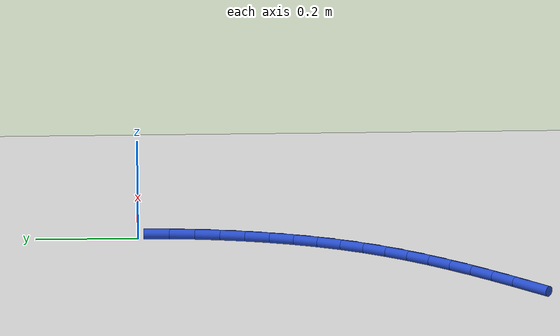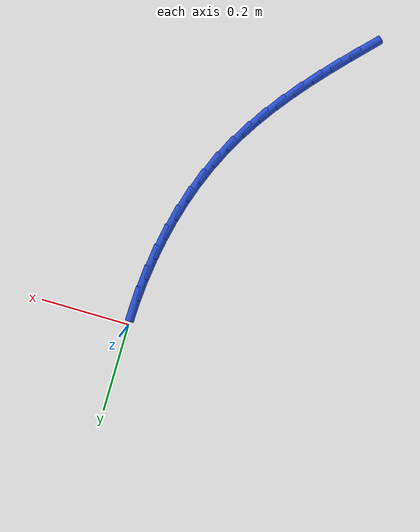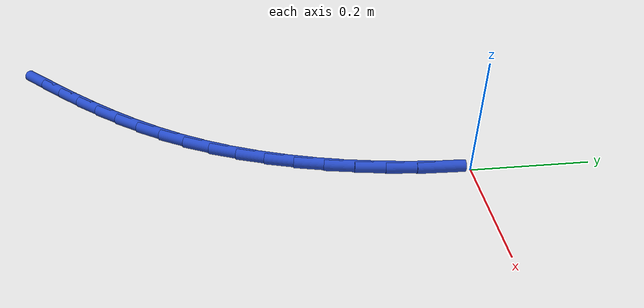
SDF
<sdf version="1.6">
 <world name="default">
  <model name="ground_plane">
   <static>1</static>
   <link name="link">
    <collision name="collision">
     <geometry><plane><normal>0 0 1</normal><size>100 100</size></plane></geometry>
     <surface><friction><ode><mu>100</mu><mu2>50</mu2></ode></friction></surface>
    </collision>
    <visual name="visual">
     <cast_shadows>0</cast_shadows>
     <geometry><plane><normal>0 0 1</normal><size>100 100</size></plane></geometry>
     <material>
      <script><uri>file://media/materials/scripts/gazebo.material</uri><name>Gazebo/WhiteGlow</name></script>
     </material>
    </visual>
   </link>
  </model>
  <model name="line">
   <link name="link_123">
    <pose>-0.33504813264265254 -0.7394317669671104 0.01 0 1.57 0.8086259768420038</pose>
    <collision name="collision">
     <geometry><cylinder><radius>0.01</radius><length>0.08</length></cylinder></geometry>
    </collision>
    <visual name="visual">
     <material>
      <script><name>Gazebo/Blue</name><uri>file://media/materials/scripts/gazebo.material</uri></script>
     </material>
     <geometry><cylinder><radius>0.01</radius><length>0.08</length></cylinder></geometry>
    </visual>
   </link>
   <link name="link_124">
    <pose>-0.3002717385257896 -0.7030010907823178 0.01 0 1.57 0.82628433889937</pose>
    <collision name="collision">
     <geometry><cylinder><radius>0.01</radius><length>0.08</length></cylinder></geometry>
    </collision>
    <visual name="visual">
     <material>
      <script><name>Gazebo/Blue</name><uri>file://media/materials/scripts/gazebo.material</uri></script>
     </material>
     <geometry><cylinder><radius>0.01</radius><length>0.08</length></cylinder></geometry>
    </visual>
   </link>
   <link name="link_125">
    <pose>-0.26646326476443616 -0.6663084904413987 0.01 0 1.57 0.8503381632864849</pose>
    <collision name="collision">
     <geometry><cylinder><radius>0.01</radius><length>0.08</length></cylinder></geometry>
    </collision>
    <visual name="visual">
     <material>
      <script><name>Gazebo/Blue</name><uri>file://media/materials/scripts/gazebo.material</uri></script>
     </material>
     <geometry><cylinder><radius>0.01</radius><length>0.08</length></cylinder></geometry>
    </visual>
   </link>
   <link name="link_126">
    <pose>-0.23385978781455463 -0.6291695644197086 0.01 0 1.57 0.8809736005910886</pose>
    <collision name="collision">
     <geometry><cylinder><radius>0.01</radius><length>0.08</length></cylinder></geometry>
    </collision>
    <visual name="visual">
     <material>
      <script><name>Gazebo/Blue</name><uri>file://media/materials/scripts/gazebo.material</uri></script>
     </material>
     <geometry><cylinder><radius>0.01</radius><length>0.08</length></cylinder></geometry>
    </visual>
   </link>
   <link name="link_127">
    <pose>-0.202698384132109 -0.5913999111926046 0.01 0 1.57 0.9183383061653961</pose>
    <collision name="collision">
     <geometry><cylinder><radius>0.01</radius><length>0.08</length></cylinder></geometry>
    </collision>
    <visual name="visual">
     <material>
      <script><name>Gazebo/Blue</name><uri>file://media/materials/scripts/gazebo.material</uri></script>
     </material>
     <geometry><cylinder><radius>0.01</radius><length>0.08</length></cylinder></geometry>
    </visual>
   </link>
   <link name="link_128">
    <pose>-0.17321613017306176 -0.5528151292354425 0.01 0 1.57 0.9624988473988656</pose>
    <collision name="collision">
     <geometry><cylinder><radius>0.01</radius><length>0.08</length></cylinder></geometry>
    </collision>
    <visual name="visual">
     <material>
      <script><name>Gazebo/Blue</name><uri>file://media/materials/scripts/gazebo.material</uri></script>
     </material>
     <geometry><cylinder><radius>0.01</radius><length>0.08</length></cylinder></geometry>
    </visual>
   </link>
   <link name="link_129">
    <pose>-0.1456501023933758 -0.5132308170235784 0.01 0 1.57 1.0133872302221651</pose>
    <collision name="collision">
     <geometry><cylinder><radius>0.01</radius><length>0.08</length></cylinder></geometry>
    </collision>
    <visual name="visual">
     <material>
      <script><name>Gazebo/Blue</name><uri>file://media/materials/scripts/gazebo.material</uri></script>
     </material>
     <geometry><cylinder><radius>0.01</radius><length>0.08</length></cylinder></geometry>
    </visual>
   </link>
   <link name="link_130">
    <pose>-0.12023737724901416 -0.4724625730323681 0.01 0 1.57 1.070740140489624</pose>
    <collision name="collision">
     <geometry><cylinder><radius>0.01</radius><length>0.08</length></cylinder></geometry>
    </collision>
    <visual name="visual">
     <material>
      <script><name>Gazebo/Blue</name><uri>file://media/materials/scripts/gazebo.material</uri></script>
     </material>
     <geometry><cylinder><radius>0.01</radius><length>0.08</length></cylinder></geometry>
    </visual>
   </link>
   <link name="link_131">
    <pose>-0.09721500310308662 -0.4303260270496143 0.01 0 1.57 1.132267816999441</pose>
    <collision name="collision">
     <geometry><cylinder><radius>0.01</radius><length>0.08</length></cylinder></geometry>
    </collision>
    <visual name="visual">
     <material>
      <script><name>Gazebo/Blue</name><uri>file://media/materials/scripts/gazebo.material</uri></script>
     </material>
     <geometry><cylinder><radius>0.01</radius><length>0.08</length></cylinder></geometry>
    </visual>
   </link>
   <link name="link_132">
    <pose>-0.07675791893645778 -0.3867060363200219 0.01 0 1.57 1.1920183235186443</pose>
    <collision name="collision">
     <geometry><cylinder><radius>0.01</radius><length>0.08</length></cylinder></geometry>
    </collision>
    <visual name="visual">
     <material>
      <script><name>Gazebo/Blue</name><uri>file://media/materials/scripts/gazebo.material</uri></script>
     </material>
     <geometry><cylinder><radius>0.01</radius><length>0.08</length></cylinder></geometry>
    </visual>
   </link>
   <link name="link_133">
    <pose>-0.058847119748227726 -0.3417036291103344 0.01 0 1.57 1.2489024494713046</pose>
    <collision name="collision">
     <geometry><cylinder><radius>0.01</radius><length>0.08</length></cylinder></geometry>
    </collision>
    <visual name="visual">
     <material>
      <script><name>Gazebo/Blue</name><uri>file://media/materials/scripts/gazebo.material</uri></script>
     </material>
     <geometry><cylinder><radius>0.01</radius><length>0.08</length></cylinder></geometry>
    </visual>
   </link>
   <link name="link_134">
    <pose>-0.043425849528565666 -0.29546191116817266 0.01 0 1.57 1.30300822784462</pose>
    <collision name="collision">
     <geometry><cylinder><radius>0.01</radius><length>0.08</length></cylinder></geometry>
    </collision>
    <visual name="visual">
     <material>
      <script><name>Gazebo/Blue</name><uri>file://media/materials/scripts/gazebo.material</uri></script>
     </material>
     <geometry><cylinder><radius>0.01</radius><length>0.08</length></cylinder></geometry>
    </visual>
   </link>
   <link name="link_135">
    <pose>-0.03043735226764068 -0.24812398824115645 0.01 0 1.57 1.354474059128867</pose>
    <collision name="collision">
     <geometry><cylinder><radius>0.01</radius><length>0.08</length></cylinder></geometry>
    </collision>
    <visual name="visual">
     <material>
      <script><name>Gazebo/Blue</name><uri>file://media/materials/scripts/gazebo.material</uri></script>
     </material>
     <geometry><cylinder><radius>0.01</radius><length>0.08</length></cylinder></geometry>
    </visual>
   </link>
   <link name="link_136">
    <pose>-0.01982487195562247 -0.1998329660769081 0.01 0 1.57 1.4034743214180234</pose>
    <collision name="collision">
     <geometry><cylinder><radius>0.01</radius><length>0.08</length></cylinder></geometry>
    </collision>
    <visual name="visual">
     <material>
      <script><name>Gazebo/Blue</name><uri>file://media/materials/scripts/gazebo.material</uri></script>
     </material>
     <geometry><cylinder><radius>0.01</radius><length>0.08</length></cylinder></geometry>
    </visual>
   </link>
   <link name="link_137">
    <pose>-0.011531652582680026 -0.1507319504230477 0.01 0 1.57 1.450207484621406</pose>
    <collision name="collision">
     <geometry><cylinder><radius>0.01</radius><length>0.08</length></cylinder></geometry>
    </collision>
    <visual name="visual">
     <material>
      <script><name>Gazebo/Blue</name><uri>file://media/materials/scripts/gazebo.material</uri></script>
     </material>
     <geometry><cylinder><radius>0.01</radius><length>0.08</length></cylinder></geometry>
    </visual>
   </link>
   <link name="link_138">
    <pose>-0.005500938138982636 -0.10096404702719586 0.01 0 1.57 1.4948868425815465</pose>
    <collision name="collision">
     <geometry><cylinder><radius>0.01</radius><length>0.08</length></cylinder></geometry>
    </collision>
    <visual name="visual">
     <material>
      <script><name>Gazebo/Blue</name><uri>file://media/materials/scripts/gazebo.material</uri></script>
     </material>
     <geometry><cylinder><radius>0.01</radius><length>0.08</length></cylinder></geometry>
    </visual>
   </link>
   <link name="link_139">
    <pose>-0.001675972614699533 -0.05067236163697333 0.01 0 1.57 1.5377336901559802</pose>
    <collision name="collision">
     <geometry><cylinder><radius>0.01</radius><length>0.08</length></cylinder></geometry>
    </collision>
    <visual name="visual">
     <material>
      <script><name>Gazebo/Blue</name><uri>file://media/materials/scripts/gazebo.material</uri></script>
     </material>
     <geometry><cylinder><radius>0.01</radius><length>0.08</length></cylinder></geometry>
    </visual>
   </link>
  </model>
 </world>
</sdf>
